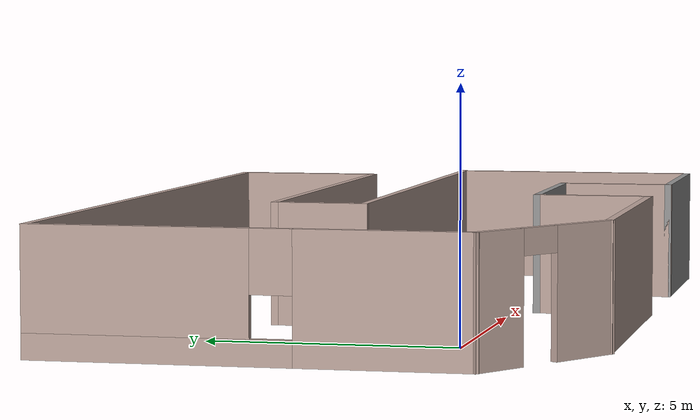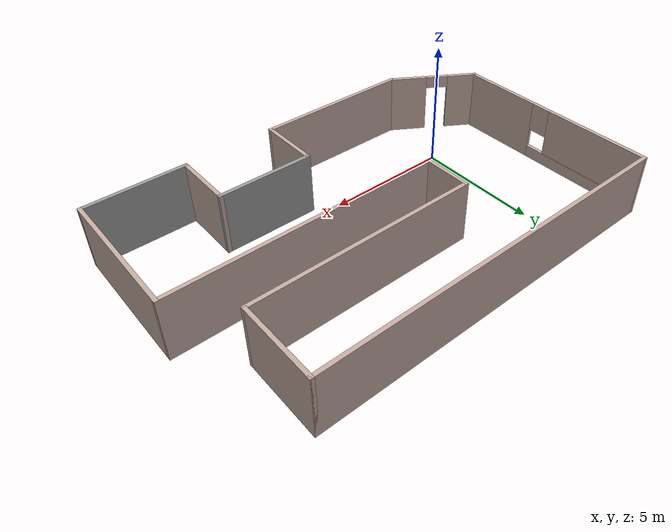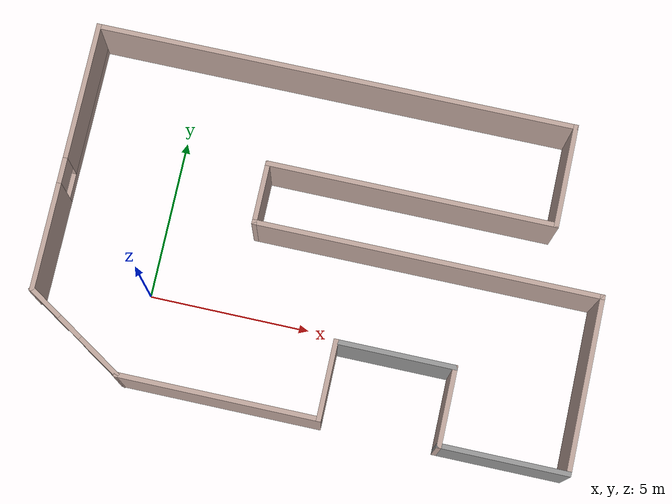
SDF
<?xml version='1.0'?>
<sdf version='1.6'>
  <model name='projbuilding'>
    <pose frame=''>5.08571 2.29571 0 0 -0 0</pose>
    <link name='Wall_0'>
      <pose frame=''>-8.28571 0.989294 0 0 -0 1.5708</pose>
      <visual name='Wall_0_Visual_0'>
        <pose frame=''>-2.56056 0 1.25 0 -0 0</pose>
        <geometry>
          <box>
            <size>3.37888 0.15 2.5</size>
          </box>
        </geometry>
        <material>
          <script>
            <uri>file://media/materials/scripts/gazebo.material</uri>
            <name>Gazebo/Grey</name>
          </script>
          <ambient>0.760784 0.662745 0.627451 1</ambient>
        </material>
        <meta>
          <layer>0</layer>
        </meta>
      </visual>
      <collision name='Wall_0_Collision_0'>
        <geometry>
          <box>
            <size>3.37888 0.15 2.5</size>
          </box>
        </geometry>
        <pose frame=''>-2.56056 0 1.25 0 -0 0</pose>
      </collision>
      <visual name='Wall_0_Visual_1'>
        <pose frame=''>1.68944 0 0.25 0 -0 0</pose>
        <geometry>
          <box>
            <size>5.12112 0.15 0.5</size>
          </box>
        </geometry>
        <material>
          <script>
            <uri>file://media/materials/scripts/gazebo.material</uri>
            <name>Gazebo/Grey</name>
          </script>
          <ambient>0.760784 0.662745 0.627451 1</ambient>
        </material>
        <meta>
          <layer>0</layer>
        </meta>
      </visual>
      <collision name='Wall_0_Collision_1'>
        <geometry>
          <box>
            <size>5.12112 0.15 0.5</size>
          </box>
        </geometry>
        <pose frame=''>1.68944 0 0.25 0 -0 0</pose>
      </collision>
      <visual name='Wall_0_Visual_2'>
        <pose frame=''>2.08944 0 1.5 0 -0 0</pose>
        <geometry>
          <box>
            <size>4.32112 0.15 2</size>
          </box>
        </geometry>
        <material>
          <script>
            <uri>file://media/materials/scripts/gazebo.material</uri>
            <name>Gazebo/Grey</name>
          </script>
          <ambient>0.760784 0.662745 0.627451 1</ambient>
        </material>
        <meta>
          <layer>0</layer>
        </meta>
      </visual>
      <collision name='Wall_0_Collision_2'>
        <geometry>
          <box>
            <size>4.32112 0.15 2</size>
          </box>
        </geometry>
        <pose frame=''>2.08944 0 1.5 0 -0 0</pose>
      </collision>
      <visual name='Wall_0_Visual_3'>
        <pose frame=''>-0.471121 0 1.9 0 -0 0</pose>
        <geometry>
          <box>
            <size>0.8 0.15 1.2</size>
          </box>
        </geometry>
        <material>
          <script>
            <uri>file://media/materials/scripts/gazebo.material</uri>
            <name>Gazebo/Grey</name>
          </script>
          <ambient>0.760784 0.662745 0.627451 1</ambient>
        </material>
        <meta>
          <layer>0</layer>
        </meta>
      </visual>
      <collision name='Wall_0_Collision_3'>
        <geometry>
          <box>
            <size>0.8 0.15 1.2</size>
          </box>
        </geometry>
        <pose frame=''>-0.471121 0 1.9 0 -0 0</pose>
      </collision>
    </link>
    <link name='Wall_1'>
      <collision name='Wall_1_Collision'>
        <geometry>
          <box>
            <size>15 0.15 2.5</size>
          </box>
        </geometry>
        <pose frame=''>0 0 1.25 0 -0 0</pose>
      </collision>
      <visual name='Wall_1_Visual'>
        <pose frame=''>0 0 1.25 0 -0 0</pose>
        <geometry>
          <box>
            <size>15 0.15 2.5</size>
          </box>
        </geometry>
        <material>
          <script>
            <uri>file://media/materials/scripts/gazebo.material</uri>
            <name>Gazebo/Grey</name>
          </script>
          <ambient>0.760784 0.662745 0.627451 1</ambient>
        </material>
        <meta>
          <layer>0</layer>
        </meta>
      </visual>
      <pose frame=''>-0.860706 5.16429 0 0 -0 0</pose>
    </link>
    <link name='Wall_10'>
      <collision name='Wall_10_Collision'>
        <geometry>
          <box>
            <size>2.5 0.15 2.5</size>
          </box>
        </geometry>
        <pose frame=''>0 0 1.25 0 -0 0</pose>
      </collision>
      <visual name='Wall_10_Visual'>
        <pose frame=''>0 0 1.25 0 -0 0</pose>
        <geometry>
          <box>
            <size>2.5 0.15 2.5</size>
          </box>
        </geometry>
        <material>
          <script>
            <uri>file://media/materials/scripts/gazebo.material</uri>
            <name>Gazebo/Grey</name>
          </script>
          <ambient>0.760784 0.662745 0.627451 1</ambient>
        </material>
        <meta>
          <layer>0</layer>
        </meta>
      </visual>
      <pose frame=''>0.864294 -3.96071 0 0 0 -1.5708</pose>
    </link>
    <link name='Wall_11'>
      <collision name='Wall_11_Collision'>
        <geometry>
          <box>
            <size>6.25 0.15 2.5</size>
          </box>
        </geometry>
        <pose frame=''>0 0 1.25 0 -0 0</pose>
      </collision>
      <visual name='Wall_11_Visual'>
        <pose frame=''>0 0 1.25 0 -0 0</pose>
        <geometry>
          <box>
            <size>6.25 0.15 2.5</size>
          </box>
        </geometry>
        <material>
          <script>
            <uri>file://media/materials/scripts/gazebo.material</uri>
            <name>Gazebo/Grey</name>
          </script>
          <ambient>0.760784 0.662745 0.627451 1</ambient>
        </material>
        <meta>
          <layer>0</layer>
        </meta>
      </visual>
      <pose frame=''>-2.18571 -5.13571 0 0 -0 3.14159</pose>
    </link>
    <link name='Wall_12'>
      <pose frame=''>-6.76071 -4.16071 0 0 -0 2.57274</pose>
      <visual name='Wall_12_Visual_0'>
        <pose frame=''>-1.08089 0 1.25 0 -0 0</pose>
        <geometry>
          <box>
            <size>1.6083 0.15 2.5</size>
          </box>
        </geometry>
        <material>
          <script>
            <uri>file://media/materials/scripts/gazebo.material</uri>
            <name>Gazebo/Grey</name>
          </script>
          <ambient>0.760784 0.662745 0.627451 1</ambient>
        </material>
        <meta>
          <layer>0</layer>
        </meta>
      </visual>
      <collision name='Wall_12_Collision_0'>
        <geometry>
          <box>
            <size>1.6083 0.15 2.5</size>
          </box>
        </geometry>
        <pose frame=''>-1.08089 0 1.25 0 -0 0</pose>
      </collision>
      <visual name='Wall_12_Visual_1'>
        <pose frame=''>1.25415 0 1.25 0 -0 0</pose>
        <geometry>
          <box>
            <size>1.26178 0.15 2.5</size>
          </box>
        </geometry>
        <material>
          <script>
            <uri>file://media/materials/scripts/gazebo.material</uri>
            <name>Gazebo/Grey</name>
          </script>
          <ambient>0.760784 0.662745 0.627451 1</ambient>
        </material>
        <meta>
          <layer>0</layer>
        </meta>
      </visual>
      <collision name='Wall_12_Collision_1'>
        <geometry>
          <box>
            <size>1.26178 0.15 2.5</size>
          </box>
        </geometry>
        <pose frame=''>1.25415 0 1.25 0 -0 0</pose>
      </collision>
      <visual name='Wall_12_Visual_2'>
        <pose frame=''>0.173258 0 2.25 0 -0 0</pose>
        <geometry>
          <box>
            <size>0.9 0.15 0.5</size>
          </box>
        </geometry>
        <material>
          <script>
            <uri>file://media/materials/scripts/gazebo.material</uri>
            <name>Gazebo/Grey</name>
          </script>
          <ambient>0.760784 0.662745 0.627451 1</ambient>
        </material>
        <meta>
          <layer>0</layer>
        </meta>
      </visual>
      <collision name='Wall_12_Collision_2'>
        <geometry>
          <box>
            <size>0.9 0.15 0.5</size>
          </box>
        </geometry>
        <pose frame=''>0.173258 0 2.25 0 -0 0</pose>
      </collision>
    </link>
    <link name='Wall_2'>
      <collision name='Wall_2_Collision'>
        <geometry>
          <box>
            <size>3.25 0.15 2.5</size>
          </box>
        </geometry>
        <pose frame=''>0 0 1.25 0 -0 0</pose>
      </collision>
      <visual name='Wall_2_Visual'>
        <pose frame=''>0 0 1.25 0 -0 0</pose>
        <geometry>
          <box>
            <size>3.25 0.15 2.5</size>
          </box>
        </geometry>
        <material>
          <script>
            <uri>file://media/materials/scripts/gazebo.material</uri>
            <name>Gazebo/Grey</name>
          </script>
          <ambient>0.760784 0.662745 0.627451 1</ambient>
        </material>
        <meta>
          <layer>0</layer>
        </meta>
      </visual>
      <pose frame=''>6.56429 3.61429 0 0 0 -1.5708</pose>
    </link>
    <link name='Wall_3'>
      <collision name='Wall_3_Collision'>
        <geometry>
          <box>
            <size>9 0.15 2.5</size>
          </box>
        </geometry>
        <pose frame=''>0 0 1.25 0 -0 0</pose>
      </collision>
      <visual name='Wall_3_Visual'>
        <pose frame=''>0 0 1.25 0 -0 0</pose>
        <geometry>
          <box>
            <size>9 0.15 2.5</size>
          </box>
        </geometry>
        <material>
          <script>
            <uri>file://media/materials/scripts/gazebo.material</uri>
            <name>Gazebo/Grey</name>
          </script>
          <ambient>0.760784 0.662745 0.627451 1</ambient>
        </material>
        <meta>
          <layer>0</layer>
        </meta>
      </visual>
      <pose frame=''>2.13929 2.06429 0 0 -0 3.14159</pose>
    </link>
    <link name='Wall_4'>
      <collision name='Wall_4_Collision'>
        <geometry>
          <box>
            <size>2 0.15 2.5</size>
          </box>
        </geometry>
        <pose frame=''>0 0 1.25 0 -0 0</pose>
      </collision>
      <visual name='Wall_4_Visual'>
        <pose frame=''>0 0 1.25 0 -0 0</pose>
        <geometry>
          <box>
            <size>2 0.15 2.5</size>
          </box>
        </geometry>
        <material>
          <script>
            <uri>file://media/materials/scripts/gazebo.material</uri>
            <name>Gazebo/Grey</name>
          </script>
          <ambient>0.760784 0.662745 0.627451 1</ambient>
        </material>
        <meta>
          <layer>0</layer>
        </meta>
      </visual>
      <pose frame=''>-2.28571 1.13929 0 0 0 -1.5708</pose>
    </link>
    <link name='Wall_5'>
      <collision name='Wall_5_Collision'>
        <geometry>
          <box>
            <size>10.75 0.15 2.5</size>
          </box>
        </geometry>
        <pose frame=''>0 0 1.25 0 -0 0</pose>
      </collision>
      <visual name='Wall_5_Visual'>
        <pose frame=''>0 0 1.25 0 -0 0</pose>
        <geometry>
          <box>
            <size>10.75 0.15 2.5</size>
          </box>
        </geometry>
        <material>
          <script>
            <uri>file://media/materials/scripts/gazebo.material</uri>
            <name>Gazebo/Grey</name>
          </script>
          <ambient>0.760784 0.662745 0.627451 1</ambient>
        </material>
        <meta>
          <layer>0</layer>
        </meta>
      </visual>
      <pose frame=''>3.0143 0.214294 0 0 -0 0</pose>
    </link>
    <link name='Wall_6'>
      <collision name='Wall_6_Collision'>
        <geometry>
          <box>
            <size>5.5 0.15 2.5</size>
          </box>
        </geometry>
        <pose frame=''>0 0 1.25 0 -0 0</pose>
      </collision>
      <visual name='Wall_6_Visual'>
        <pose frame=''>0 0 1.25 0 -0 0</pose>
        <geometry>
          <box>
            <size>5.5 0.15 2.5</size>
          </box>
        </geometry>
        <material>
          <script>
            <uri>file://media/materials/scripts/gazebo.material</uri>
            <name>Gazebo/Grey</name>
          </script>
          <ambient>0.760784 0.662745 0.627451 1</ambient>
        </material>
        <meta>
          <layer>0</layer>
        </meta>
      </visual>
      <pose frame=''>8.31429 -2.46071 0 0 0 -1.5708</pose>
    </link>
    <link name='Wall_7'>
      <collision name='Wall_7_Collision'>
        <geometry>
          <box>
            <size>4 0.15 2.5</size>
          </box>
        </geometry>
        <pose frame=''>0 0 1.25 0 -0 0</pose>
      </collision>
      <visual name='Wall_7_Visual'>
        <pose frame=''>0 0 1.25 0 -0 0</pose>
        <geometry>
          <box>
            <size>4 0.15 2.5</size>
          </box>
        </geometry>
        <material>
          <script>
            <uri>file://media/materials/scripts/gazebo.material</uri>
            <name>Gazebo/Grey</name>
          </script>
          <ambient>1 1 1 1</ambient>
        </material>
        <meta>
          <layer>0</layer>
        </meta>
      </visual>
      <pose frame=''>6.38929 -5.13571 0 0 -0 3.14159</pose>
    </link>
    <link name='Wall_8'>
      <collision name='Wall_8_Collision'>
        <geometry>
          <box>
            <size>2.5 0.15 2.5</size>
          </box>
        </geometry>
        <pose frame=''>0 0 1.25 0 -0 0</pose>
      </collision>
      <visual name='Wall_8_Visual'>
        <pose frame=''>0 0 1.25 0 -0 0</pose>
        <geometry>
          <box>
            <size>2.5 0.15 2.5</size>
          </box>
        </geometry>
        <material>
          <script>
            <uri>file://media/materials/scripts/gazebo.material</uri>
            <name>Gazebo/Grey</name>
          </script>
          <ambient>0.760784 0.662745 0.627451 1</ambient>
        </material>
        <meta>
          <layer>0</layer>
        </meta>
      </visual>
      <pose frame=''>4.46429 -3.96071 0 0 -0 1.5708</pose>
    </link>
    <link name='Wall_9'>
      <collision name='Wall_9_Collision'>
        <geometry>
          <box>
            <size>3.75 0.15 2.5</size>
          </box>
        </geometry>
        <pose frame=''>0 0 1.25 0 -0 0</pose>
      </collision>
      <visual name='Wall_9_Visual'>
        <pose frame=''>0 0 1.25 0 -0 0</pose>
        <geometry>
          <box>
            <size>3.75 0.15 2.5</size>
          </box>
        </geometry>
        <material>
          <script>
            <uri>file://media/materials/scripts/gazebo.material</uri>
            <name>Gazebo/Grey</name>
          </script>
          <ambient>1 1 1 1</ambient>
        </material>
        <meta>
          <layer>0</layer>
        </meta>
      </visual>
      <pose frame=''>2.66429 -2.78571 0 0 -0 3.14159</pose>
    </link>
    <static>1</static>
  </model>
</sdf>
